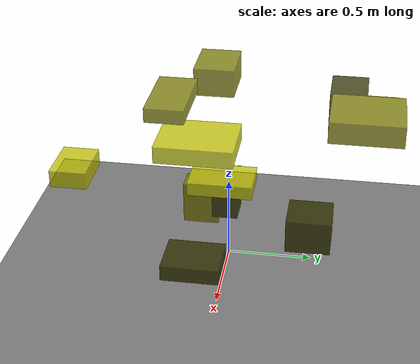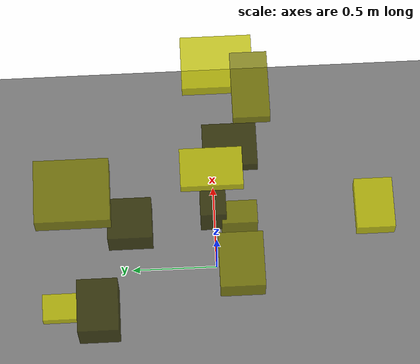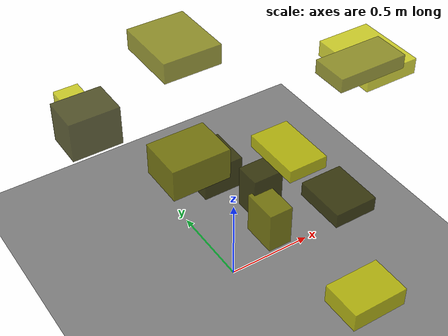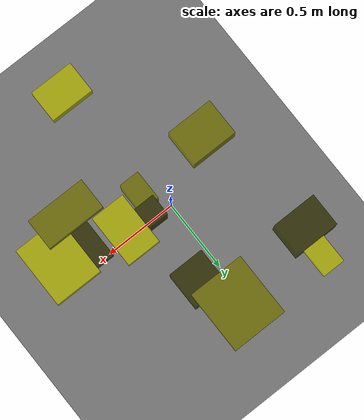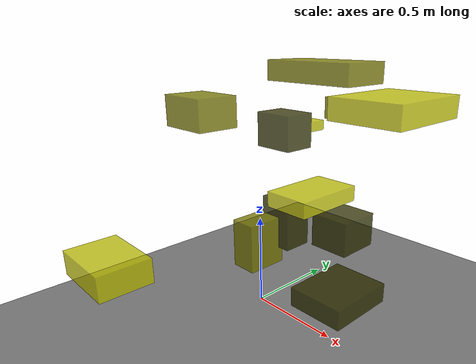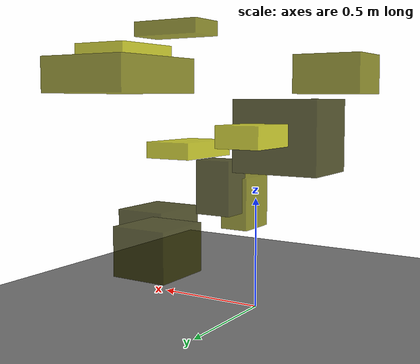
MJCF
<?xml version="1.0"?>
<mujoco model="obstacle_scene">
  <compiler angle="radian" coordinate="local"/>
  <option timestep="0.001" gravity="0 0 -9.81"/>

  <asset>
    <material name="obstacle_mat" rgba="0.8 0.8 0.0 0.8"/>
    <material name="ground_mat" rgba="0.5 0.5 0.5 1"/>
  </asset>

  <worldbody>
    <!-- Ground plane -->
    <geom name="ground" type="plane" size="3 3 0.1" material="ground_mat"/>

    <!-- Obstacles -->
    <body name="obstacle_0" pos="0.175867 0.497252 0.341309">
      <geom name="obs_0" type="box" size="0.122865 0.129029 0.100865" rgba="0.2 0.2 0.0 0.8"/>
    </body>
    <body name="obstacle_1" pos="-0.328398 -0.117509 1.051136">
      <geom name="obs_1" type="box" size="0.151531 0.119506 0.084205" rgba="0.5 0.5 0.0 0.8"/>
    </body>
    <body name="obstacle_2" pos="-0.464921 0.780772 0.831892">
      <geom name="obs_2" type="box" size="0.072822 0.187060 0.034215" rgba="0.8 0.8 0.0 0.8"/>
    </body>
    <body name="obstacle_3" pos="0.624923 -0.104736 0.346762">
      <geom name="obs_3" type="box" size="0.132266 0.159122 0.045025" rgba="0.2 0.2 0.0 0.8"/>
    </body>
    <body name="obstacle_4" pos="0.136067 -0.135607 0.457055">
      <geom name="obs_4" type="box" size="0.067789 0.101349 0.121276" rgba="0.5 0.5 0.0 0.8"/>
    </body>
    <body name="obstacle_5" pos="0.783463 -0.035240 1.175932">
      <geom name="obs_5" type="box" size="0.153548 0.194904 0.043674" rgba="0.8 0.8 0.0 0.8"/>
    </body>
    <body name="obstacle_6" pos="0.178568 0.013639 0.541873">
      <geom name="obs_6" type="box" size="0.087831 0.072661 0.124541" rgba="0.2 0.2 0.0 0.8"/>
    </body>
    <body name="obstacle_7" pos="0.120191 0.783564 1.026800">
      <geom name="obs_7" type="box" size="0.178690 0.204842 0.063071" rgba="0.5 0.5 0.0 0.8"/>
    </body>
    <body name="obstacle_8" pos="0.130104 -0.900886 0.591582">
      <geom name="obs_8" type="box" size="0.148101 0.107824 0.051808" rgba="0.8 0.8 0.0 0.8"/>
    </body>
    <body name="obstacle_9" pos="-0.485729 0.666412 0.825091">
      <geom name="obs_9" type="box" size="0.146265 0.111381 0.118355" rgba="0.2 0.2 0.0 0.8"/>
    </body>
    <body name="obstacle_10" pos="0.585885 -0.206109 1.302972">
      <geom name="obs_10" type="box" size="0.190853 0.099559 0.037846" rgba="0.5 0.5 0.0 0.8"/>
    </body>
    <body name="obstacle_11" pos="0.351814 0.015162 0.711362">
      <geom name="obs_11" type="box" size="0.115145 0.177550 0.037603" rgba="0.8 0.8 0.0 0.8"/>
    </body>
  </worldbody>
</mujoco>
